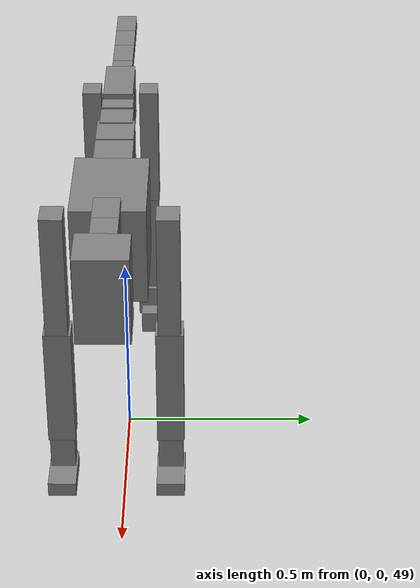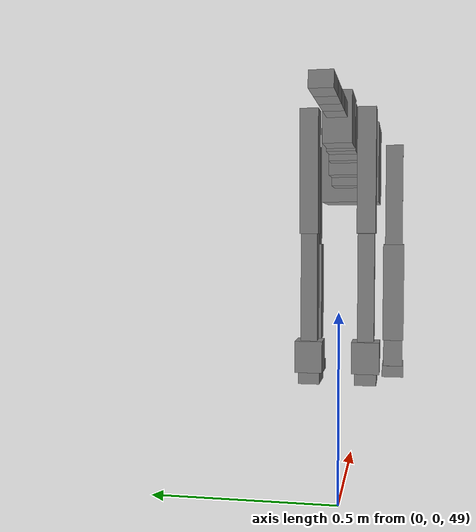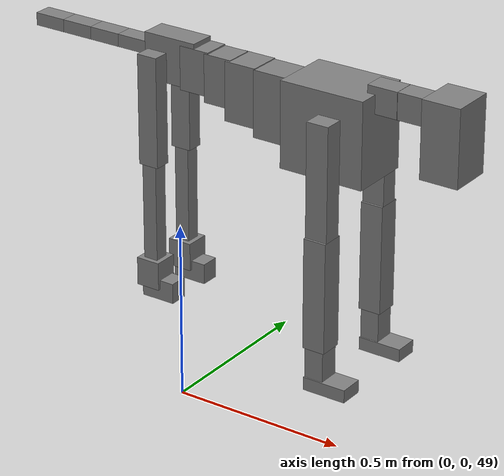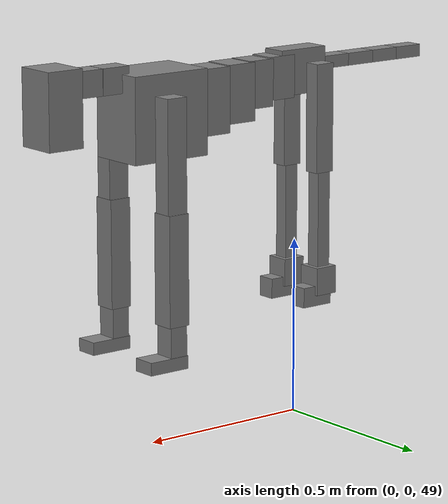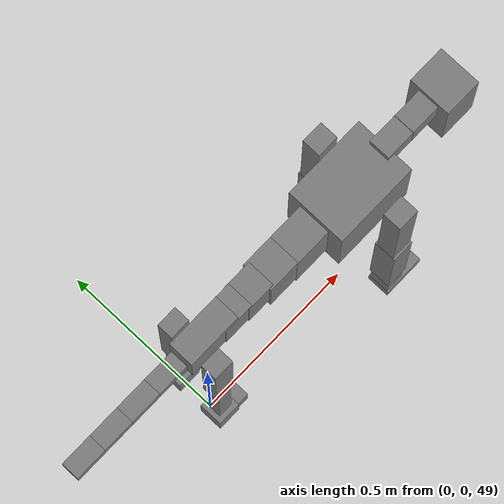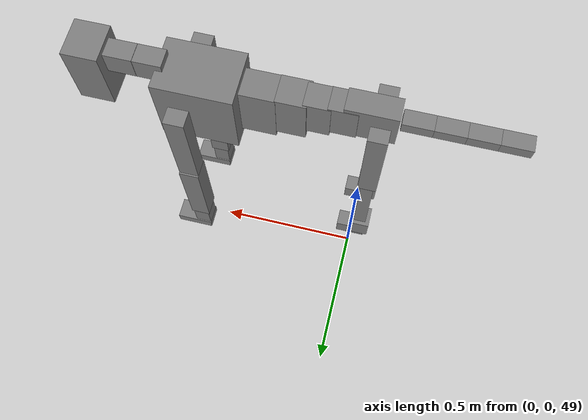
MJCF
<mujoco model="dog">

    <default>
        <joint armature="0.02" stiffness="1" damping="0.2" limited="true"/>
        <geom condim="3" friction="1 0.05 0.05" margin="0.01"/>
        <motor ctrllimited="true" ctrlrange="-1.0 1.0" forcelimited="true" gear="50"/>
    </default>

    <compiler inertiafromgeom="true" angle="radian"/>

    <option timestep="0.016" iterations="50" tolerance="1e-10" solver="Newton" jacobian="dense" cone="pyramidal"/>

    <size nconmax="20000" njmax="60000" nstack="5000000"/>
    <visual>
        <map force="0.1" zfar="30"/>
        <rgba haze="0.15 0.25 0.35 1"/>
        <quality shadowsize="2048"/>
        <global offwidth="800" offheight="800"/>
    </visual>

    <asset>
        <texture type="skybox" builtin="gradient" rgb1="0.3 0.5 0.7" rgb2="0 0 0" width="512" height="512"/>
        <texture name="texplane" type="2d" builtin="checker" rgb1=".2 .3 .4" rgb2=".1 0.15 0.2" width="512" height="512"
                 mark="cross" markrgb=".8 .8 .8"/>
        <texture name="texgeom" type="cube" builtin="flat" mark="cross" width="127" height="1278" rgb1="0.8 0.6 0.4"
                 rgb2="0.8 0.6 0.4" markrgb="1 1 1" random="0.01"/>

        <material name="matplane" reflectance="0.3" texture="texplane" texrepeat="1 1" texuniform="true"/>
        <material name="matgeom" texture="texgeom" texuniform="true" rgba="0.8 0.6 .4 1"/>
    </asset>

    <worldbody>
        <geom name="floor" pos="0 0 0" size="0 0 .25" type="plane" material="matplane" condim="3"/>

        <light directional="false" diffuse=".2 .2 .2" specular="0 0 0" pos="0 0 5" dir="0 0 -1" castshadow="false"/>
        <light mode="targetbodycom" target="torso" directional="false" diffuse=".8 .8 .8" specular="0.3 0.3 0.3"
               pos="0 0 4.0" dir="0 0 -1"/>

        <body name="root" pos="0 0 50">
            <freejoint name="root_1"/>
            <geom type="box" pos="0 0 -0.02" size="0.0774  0.0358  0.063" density="2030"/>

            <body name="spine1" pos="0.054 0 0">
                <joint name="spine1_y" axis="0 1 0" range="0 0.7" limited="true"/>
                <geom type="box" pos="0.02375 0 -0.03" size="0.04375  0.0375  0.05985" density="2030"/>

                <body name="spine2" pos="0.0612 0 0">
                    <joint name="spine2_y" axis="0 1 0" range="-0.15 0.15" limited="true"/>
                    <geom type="box" pos="0.03555  0  -0.04" size="0.04055  0.039  0.06615" density="2030"/>

                    <body name="spine3" pos="0.0730 0 0">
                        <joint name="spine3_y" axis="0 1 0" range="-0.15 0.15" limited="true"/>
                        <geom type="box" pos="0.03555  0  -0.057" size="0.04555  0.0445  0.081" density="2030"/>

                        <body name="spine4" pos="0.0780 0 0">
                            <joint name="spine4_y" axis="0 1 0" range="-0.15 0.15" limited="true"/>
                            <geom type="box" pos="0.05265  0  -0.07" size="0.05265  0.045  0.09135" density="2030"/>

                            <body name="torso" pos="0.1082 0 0">
                                <joint name="torso_y" axis="0 1 0" range="-0.15 0.15" limited="true"/>
                                <geom type="box" pos="0.11925  0  -0.085" size="0.11925  0.085  0.11745"
                                      density="2030"/>

                                <body name="neck1" pos="0.2160  0   0.0180">
                                    <joint name="neck1_y" axis="0 1 0" range="-1.2  -1" limited="true"/>
                                    <geom type="box" pos="0.0423  0  0" size="0.0423  0.03  0.036" density="2325"/>

                                    <body name="neck2" pos="0.0853  0  0">
                                        <joint name="neck2_y" axis="0 1 0" range="0.1  0" limited="true"/>
                                        <geom type="box" pos="0.0423  0  0" size="0.0423  0.03  0.036" density="2325"/>

                                        <body name="head" pos="0.0853  0  0">
                                            <joint name="head_y" axis="0 1 0" range="-0.3  -0.2" limited="true"/>
                                            <geom type="box" pos="0.0531  0  -0.055" size="0.0531  0.06  0.1044"
                                                  density="4030"/>

                                        </body>
                                    </body>
                                </body>

                                <body name="front_shoulder" pos="0.156  0   -0.0480">
                                    <joint name="front_shoulder_y" axis="0 1 0" range="-1 1.5" limited="true"/>
                                    <geom type="box" pos="0 0.13 -0.1415" size="0.0310  0.0265  0.1682" density="1158"/>
                                    <geom type="box" pos="0 -0.13 -0.1415" size="0.0310  0.0265  0.1682"
                                          density="1158"/>

                                    <body name="front_elbow" pos="0  0  -0.2830">
                                        <joint name="front_elbow_y" axis="0 1 0" range="-2 0" limited="true"/>
                                        <geom type="box" pos="0 0.13 -0.1517" size="0.0317  0.0324  0.1517"
                                              density="1081"/>
                                        <geom type="box" pos="0 -0.13 -0.1517" size="0.0317  0.0324  0.1517"
                                              density="1081"/>

                                        <body name="front_wrist" pos="0  0  -0.3034">
                                            <joint name="front_wrist_y" axis="0 1 0" range="-0.2 0" limited="true"/>
                                            <geom type="box" pos="0 0.13 -0.0488" size="0.0265  0.0295  0.0619"
                                                  density="1664"/>
                                            <geom type="box" pos="0 -0.13 -0.0488" size="0.0265  0.0295  0.0619"
                                                  density="1664"/>

                                            <body name="front_finger_end" pos="0  0  -0.0975">
                                                <joint name="front_finger_y" axis="0 1 0" range="-0.4 1"
                                                       limited="true"/>
                                                <geom type="box" pos="0.0335  0.13  -0.0028"
                                                      size="0.0614  0.0335  0.0178" density="1515"/>
                                                <geom type="box" pos="0.0335  -0.13  -0.0028"
                                                      size="0.0614  0.0335  0.0178" density="1515"/>

                                            </body>

                                        </body>
                                    </body>
                                </body>

                            </body>
                        </body>
                    </body>
                </body>
            </body>

            <body name="back_hip" pos="-0.03 0 -0.018">
                <joint name="back_hip_y" axis="0 1 0" range="-1.5 0.3" limited="true"/>
                <geom type="box" pos="0 0.07 -0.1293" size="0.0290  0.0227  0.1521" density="1154"/>
                <geom type="box" pos="0 -0.07 -0.1293" size="0.0290  0.0227  0.1521" density="1154"/>

                <body name="back_knee" pos="0  0  -0.2586">
                    <joint name="back_knee_y" axis="0 1 0" range="0 2.8" limited="true"/>
                    <geom type="box" pos="0 0.07 -0.1503" size="0.0206  0.0203  0.1659" density="1227"/>
                    <geom type="box" pos="0 -0.07 -0.1503" size="0.0206  0.0203  0.1659" density="1227"/>

                    <body name="back_ankle" pos="0  0  -0.3007">
                        <joint name="back_ankle_y" axis="0 1 0" range="-2.2 0" limited="true"/>
                        <geom type="box" pos="0 0.07 -0.0279" size="0.0341  0.0341  0.0391" density="1284"/>
                        <geom type="box" pos="0 -0.07 -0.0279" size="0.0341  0.0341  0.0391" density="1284"/>

                        <body name="back_toe_end" pos="0  0  -0.0558">
                            <joint name="back_toe_y" axis="0 1 0" range="-0.4 1" limited="true"/>
                            <geom type="box" pos="0.0265  0.07  -0.0133" size="0.0485  0.0265  0.0283" density="1515"/>
                            <geom type="box" pos="0.0265  -0.07  -0.0133" size="0.0485  0.0265  0.0283" density="1515"/>

                        </body>
                    </body>
                </body>
            </body>

            <body name="tail1" pos="-0.074 0 -0.006">
                <joint name="tail1_y" axis="0 1 0" range="-0.2 0.2" limited="true"/>
                <geom type="box" pos="-0.0536  0  0" size="0.045  0.025  0.0175" density="1587"/>

                <body name="tail2" pos="-0.09 0 0">
                    <joint name="tail2_y" axis="0 1 0" range="-0.2 0.2" limited="true"/>
                    <geom type="box" pos="-0.0536  0  0" size="0.045  0.025  0.0175" density="1587"/>

                    <body name="tail3" pos="-0.09 0 0">
                        <joint name="tail3_y" axis="0 1 0" range="-0.2 0.2" limited="true"/>
                        <geom type="box" pos="-0.0536  0  0" size="0.045  0.025  0.0175" density="1587"/>

                        <body name="tail4" pos="-0.09 0 0">
                            <joint name="tail4_y" axis="0 1 0" range="-0.2 0.2" limited="true"/>
                            <geom type="box" pos="-0.0536  0  0" size="0.045  0.025  0.0175" density="1587"/>

                        </body>
                    </body>
                </body>
            </body>
        </body>
    </worldbody>

    <actuator>
        <motor joint="spine1_y" forcerange="-150 150     "/>
        <motor joint="spine2_y" forcerange="-150 150     "/>
        <motor joint="spine3_y" forcerange="-150 150     "/>
        <motor joint="spine4_y" forcerange="-150 150     "/>
        <motor joint="torso_y" forcerange="-150 150     "/>
        <motor joint="neck1_y" forcerange="-100 100       "/>
        <motor joint="neck2_y" forcerange="-100 100       "/>
        <motor joint="head_y" forcerange="-150 150       "/>
        <motor joint="front_shoulder_y" forcerange="-145.04 131.80"/>
        <motor joint="front_elbow_y" forcerange="-142.43 193.41"/>
        <motor joint="front_wrist_y" forcerange="-106.03 129.65"/>
        <motor joint="front_finger_y" forcerange="-39.17 99.56"/>
        <motor joint="back_hip_y" forcerange="-219.69 283.23"/>
        <motor joint="back_knee_y" forcerange="-257.31 238.09"/>
        <motor joint="back_angle_y" forcerange="-227.75 218.35"/>
        <motor joint="back_toe_y" forcerange="-64.19 67.59"/>
        <motor joint="tail1_y" forcerange="-50 50     "/>
        <motor joint="tail2_y" forcerange="-50 50     "/>
        <motor joint="tail3_y" forcerange="-50 50     "/>
        <motor joint="tail4_y" forcerange="-50 50     "/>
    </actuator>
</mujoco>
